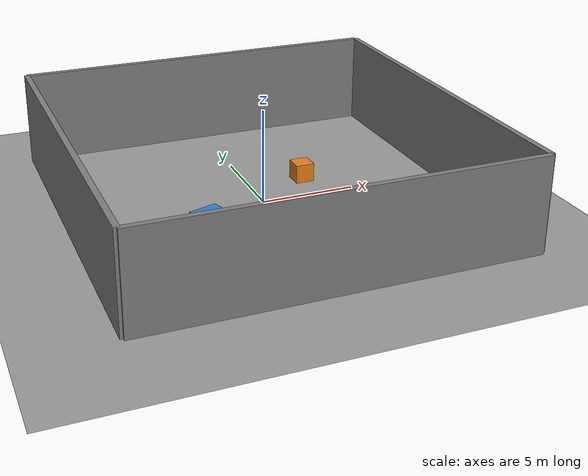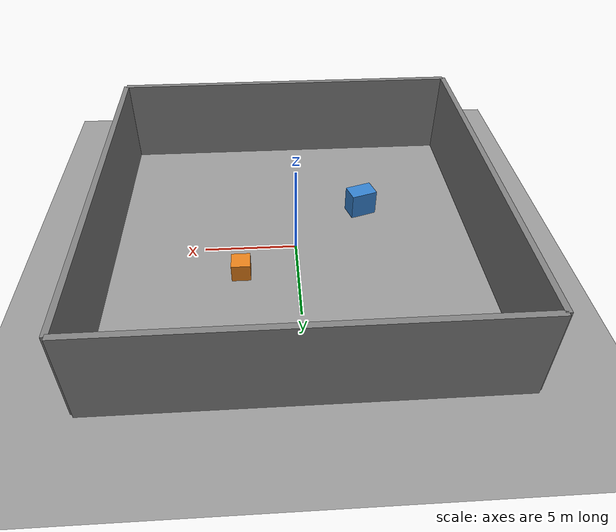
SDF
<?xml version="1.0" ?>
<sdf version="1.8">
  <world name="warehouse">
    <!-- SENSORS SYSTEM — required for camera/imu/lidar to publish data -->
    <plugin filename="gz-sim-sensors-system" name="gz::sim::systems::Sensors">
      <render_engine>ogre2</render_engine>
    </plugin>
    <plugin filename="gz-sim-imu-system" name="gz::sim::systems::Imu"/>
    <plugin filename="gz-sim-physics-system" name="gz::sim::systems::Physics"/>
    <plugin filename="gz-sim-user-commands-system" name="gz::sim::systems::UserCommands"/>
    <plugin filename="gz-sim-scene-broadcaster-system" name="gz::sim::systems::SceneBroadcaster"/>

    <physics name="default_physics" type="ode">
      <max_step_size>0.001</max_step_size>
      <real_time_factor>1.0</real_time_factor>
    </physics>

    <light type="directional" name="sun">
      <cast_shadows>true</cast_shadows>
      <pose>0 0 10 0 0 0</pose>
      <diffuse>0.8 0.8 0.8 1</diffuse>
      <specular>0.2 0.2 0.2 1</specular>
      <direction>-0.5 0.1 -0.9</direction>
    </light>

    <model name="ground_plane">
      <static>true</static>
      <link name="link">
        <collision name="collision">
          <geometry><plane><normal>0 0 1</normal><size>100 100</size></plane></geometry>
        </collision>
        <visual name="visual">
          <geometry><plane><normal>0 0 1</normal><size>100 100</size></plane></geometry>
          <material>
            <ambient>0.55 0.55 0.55 1</ambient>
            <diffuse>0.6 0.6 0.6 1</diffuse>
          </material>
        </visual>
      </link>
    </model>

    <!-- Walls -->
    <model name="wall_back"><static>true</static>
      <link name="link"><pose>0 -10 2.5 0 0 0</pose>
        <collision name="c"><geometry><box><size>20 0.3 5</size></box></geometry></collision>
        <visual name="v"><geometry><box><size>20 0.3 5</size></box></geometry>
          <material><ambient>0.5 0.5 0.5 1</ambient></material></visual>
      </link>
    </model>
    <model name="wall_front"><static>true</static>
      <link name="link"><pose>0 10 2.5 0 0 0</pose>
        <collision name="c"><geometry><box><size>20 0.3 5</size></box></geometry></collision>
        <visual name="v"><geometry><box><size>20 0.3 5</size></box></geometry>
          <material><ambient>0.5 0.5 0.5 1</ambient></material></visual>
      </link>
    </model>
    <model name="wall_left"><static>true</static>
      <link name="link"><pose>-10 0 2.5 0 0 1.5707</pose>
        <collision name="c"><geometry><box><size>20 0.3 5</size></box></geometry></collision>
        <visual name="v"><geometry><box><size>20 0.3 5</size></box></geometry>
          <material><ambient>0.5 0.5 0.5 1</ambient></material></visual>
      </link>
    </model>
    <model name="wall_right"><static>true</static>
      <link name="link"><pose>10 0 2.5 0 0 1.5707</pose>
        <collision name="c"><geometry><box><size>20 0.3 5</size></box></geometry></collision>
        <visual name="v"><geometry><box><size>20 0.3 5</size></box></geometry>
          <material><ambient>0.5 0.5 0.5 1</ambient></material></visual>
      </link>
    </model>

    <!-- Boxes/obstacles -->
    <model name="box1"><static>true</static>
      <link name="link"><pose>3 2 0.5 0 0 0</pose>
        <collision name="c"><geometry><box><size>1 1 1</size></box></geometry></collision>
        <visual name="v"><geometry><box><size>1 1 1</size></box></geometry>
          <material><ambient>0.8 0.4 0.1 1</ambient><diffuse>0.9 0.5 0.1 1</diffuse></material></visual>
      </link>
    </model>
    <model name="box2"><static>true</static>
      <link name="link"><pose>-4 -3 0.75 0 0 0.3</pose>
        <collision name="c"><geometry><box><size>1.5 1 1.5</size></box></geometry></collision>
        <visual name="v"><geometry><box><size>1.5 1 1.5</size></box></geometry>
          <material><ambient>0.2 0.5 0.8 1</ambient></material></visual>
      </link>
    </model>

    <!-- Overhead camera (bird's eye view of the warehouse) -->
    <model name="overhead_camera">
      <static>true</static>
      <pose>0 0 8 0 1.5707 0</pose>
      <link name="link">
        <sensor name="overhead_cam" type="camera">
          <always_on>true</always_on>
          <update_rate>10</update_rate>
          <topic>overhead_camera</topic>
          <camera>
            <horizontal_fov>1.8</horizontal_fov>
            <image>
              <width>640</width>
              <height>480</height>
              <format>R8G8B8</format>
            </image>
            <clip><near>0.5</near><far>50</far></clip>
          </camera>
        </sensor>
      </link>
    </model>

    <!-- Side camera (watching from corner) -->
    <model name="side_camera">
      <static>true</static>
      <pose>-6 -6 3 0 0.4 0.785</pose>
      <link name="link">
        <sensor name="side_cam" type="camera">
          <always_on>true</always_on>
          <update_rate>10</update_rate>
          <topic>side_camera</topic>
          <camera>
            <horizontal_fov>1.4</horizontal_fov>
            <image>
              <width>640</width>
              <height>480</height>
              <format>R8G8B8</format>
            </image>
            <clip><near>0.5</near><far>50</far></clip>
          </camera>
        </sensor>
      </link>
    </model>

  </world>
</sdf>
